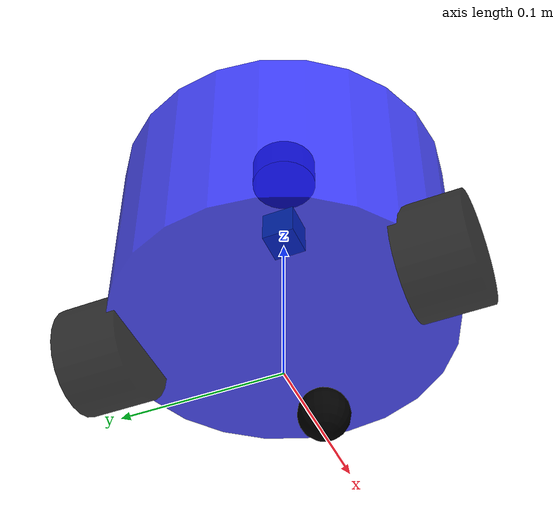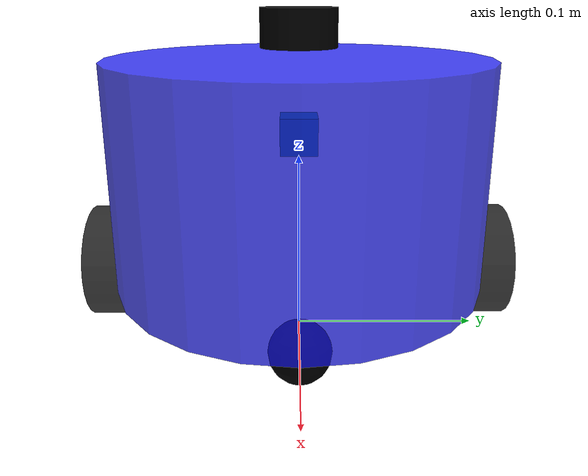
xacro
<?xml version="1.0"?>
<robot name="zmr_robot" xmlns:xacro="http://ros.org/wiki/xacro">

  <!-- To get a URDF file, run: `ros2 run xacro xacro robot.urdf.xacro > robot.urdf` -->

  <!-- Namespace (used to differentiate different robots) -->
  <xacro:arg name="namespace" default="zmr_X"/>

  <!-- Included the model -->
  <xacro:include filename="$(find zmr_description)/urdf/materials/model.urdf.xacro" />

  <!-- Load the model -->
  <xacro:zmr_model namespace="$(arg namespace)"/>

  <!-- Robot Footprint link and joint -->
  <link name="$(arg namespace)/base_footprint"/>
  <joint name="$(arg namespace)/base_joint" type="fixed">
    <parent link="$(arg namespace)/base_footprint"/>
    <child link="$(arg namespace)/base_link"/>
    <origin xyz="0.0 0.0 0.092" rpy="0 0 0"/> <!-- 0.092=0.016*2+0.12/2, caster and main body -->
  </joint>

</robot>

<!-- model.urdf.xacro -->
<robot xmlns:xacro="http://ros.org/wiki/xacro">

  <!-- Included URDF/XACRO Files -->
  <xacro:include filename="$(find zmr_description)/urdf/materials/materials.urdf.xacro" />
  <xacro:include filename="$(find zmr_description)/urdf/materials/parameters.urdf.xacro" />
  <xacro:include filename="$(find zmr_description)/urdf/materials/drive_model.urdf.xacro" />

  <!-- Robot Description -->
  <xacro:macro name="zmr_model" params="namespace">

    <!-- Driver -->
    <xacro:zmr_drive_model namespace="${namespace}"/>

    <!-- base link -->
    <link name="${namespace}/base_link">
      <visual>
        <origin xyz="0 0 0.0" rpy="0 0 0"/>
        <geometry>
          <cylinder length="${body_cylinder_length}" radius="${body_cylinder_radius}"/>
        </geometry>
        <material name="blue_body"/>
      </visual>

      <collision>
        <origin xyz="0 0 0.0" rpy="0 0 0"/>
        <geometry>
          <cylinder length="${body_cylinder_length}" radius="${body_cylinder_radius}"/>
        </geometry>
        <material name="blue_body"/>
      </collision>

      <inertial>
        <mass value="${body_cylinder_mass}"/>
        <xacro:cylinder_inertia m="${body_cylinder_mass}" r="${body_cylinder_radius}" h="${body_cylinder_length}" />
      </inertial>
    </link>

    <!-- laser link -->
    <link name="${namespace}/laser_link">
      <visual>
        <origin xyz="0 0 0" rpy="0 0 0"/>
        <geometry>
          <cylinder length="${laser_cylinder_length}" radius="${laser_cylinder_radius}"/>
        </geometry>
        <material name="black_laser"/>
      </visual>

      <collision>
        <origin xyz="0 0 0" rpy="0 0 0"/>
        <geometry>
          <cylinder length="${laser_cylinder_length}" radius="${laser_cylinder_radius}"/>
        </geometry>
        <material name="black_laser"/>
      </collision>

      <inertial>
        <mass value="${laser_cylinder_mass}"/>
        <xacro:cylinder_inertia m="${laser_cylinder_mass}" r="${laser_cylinder_radius}" h="${laser_cylinder_length}" />
      </inertial>
    </link>
    <!-- laser joint -->
    <joint name="${namespace}/laser_joint" type="fixed">
      <parent link="${namespace}/base_link" />
      <child link="${namespace}/laser_link" />
      <origin xyz="0 0 0.075" />
    </joint>

    <!-- imu link -->
    <link name="${namespace}/imu_link">
      <visual>
        <origin xyz="0 0 0.0" rpy="0 0 0"/>
        <geometry>
          <box size="${imu_box_length} ${imu_box_width} ${imu_box_height}"/>
        </geometry>
      </visual>

      <collision>
        <origin xyz="0 0 0.0" rpy="0 0 0"/>
        <geometry>
          <box size="${imu_box_length} ${imu_box_width} ${imu_box_height}"/>
        </geometry>
      </collision>

      <inertial>
        <mass value="${imu_box_mass}"/>
        <xacro:box_inertia m="${imu_box_mass}" x="${imu_box_length}" y="${imu_box_width}" z="${imu_box_height}" />
      </inertial>
    </link>
    <!-- imu joint -->
    <joint name="${namespace}/imu_joint" type="fixed">
      <parent link="${namespace}/base_link" />
      <child link="${namespace}/imu_link" />
      <origin xyz="0 0 0.02" />
    </joint>

    <!-- right wheel link -->
    <link name="${namespace}/right_wheel_link">
      <visual>
        <origin xyz="0 0 0" rpy="1.57079 0 0"/>
        <geometry>
          <cylinder length="${wheel_cylinder_length}" radius="${wheel_cylinder_radius}"/>
        </geometry>
        <material name="black_wheel"/>
      </visual>

      <collision>
        <origin xyz="0 0 0" rpy="1.57079 0 0"/>
        <geometry>
          <cylinder length="${wheel_cylinder_length}" radius="${wheel_cylinder_radius}"/>
        </geometry>
        <material name="black_wheel"/>
      </collision>

      <inertial>
        <mass value="${wheel_cylinder_mass}"/>
        <xacro:cylinder_inertia m="${wheel_cylinder_mass}" r="${wheel_cylinder_radius}" h="${wheel_cylinder_length}" />
      </inertial>
    </link>
    <!-- right wheel joint -->
    <joint name="${namespace}/right_wheel_joint" type="continuous">
      <parent link="${namespace}/base_link" />
      <child link="${namespace}/right_wheel_link" />
      <origin xyz="-0.02 -0.10 -0.06" />
      <axis xyz="0 1 0" />
    </joint>

    <!-- left wheel link -->
    <link name="${namespace}/left_wheel_link">
      <visual>
        <origin xyz="0 0 0" rpy="1.57079 0 0"/>
        <geometry>
          <cylinder length="${wheel_cylinder_length}" radius="${wheel_cylinder_radius}"/>
        </geometry>
        <material name="black_wheel"/>
      </visual>

      <collision>
        <origin xyz="0 0 0" rpy="1.57079 0 0"/>
        <geometry>
          <cylinder length="${wheel_cylinder_length}" radius="${wheel_cylinder_radius}"/>
        </geometry>
        <material name="black_wheel"/>
      </collision>

      <inertial>
        <mass value="${wheel_cylinder_mass}"/>
        <xacro:cylinder_inertia m="${wheel_cylinder_mass}" r="${wheel_cylinder_radius}" h="${wheel_cylinder_length}" />
      </inertial>
    </link>
    <!-- left wheel joint -->
    <joint name="${namespace}/left_wheel_joint" type="continuous">
      <parent link="${namespace}/base_link" />
      <child link="${namespace}/left_wheel_link" />
      <origin xyz="-0.02 0.10 -0.06" />
      <axis xyz="0 1 0" />
    </joint>

    <!-- caster link -->
    <link name="${namespace}/caster_link">
      <visual>
        <origin xyz="0 0 0" rpy="0 0 0"/>
        <geometry>
          <sphere radius="${caster_sphere_radius}"/>
        </geometry>
        <material name="black_caster"/>
      </visual>

      <collision>
        <origin xyz="0 0 0" rpy="1.57079 0 0"/>
        <geometry>
            <sphere radius="${caster_sphere_radius}"/>
        </geometry>
        <material name="black_caster"/>
      </collision>

      <inertial>
        <mass value="${caster_sphere_mass}"/>
        <xacro:sphere_inertia m="${caster_sphere_mass}" r="${caster_sphere_radius}" />
      </inertial>
    </link>
    <!-- caster joint -->
    <joint name="${namespace}/caster_joint" type="fixed">
      <parent link="${namespace}/base_link" />
      <child link="${namespace}/caster_link" />
      <origin xyz="0.06 0.0 -0.076" />
    </joint>

    <!-- Gazebo - caster joint -->
    <gazebo reference="${namespace}/caster_link">
      <material>Gazebo/Black</material>
      <mu1 value="0.0"/>
      <mu2 value="0.0"/>
      <kp value="1000000.0" />
      <kd value="10.0" />
    </gazebo>

    <!-- Gazebo - imu link -->
    <gazebo reference="${namespace}/imu_link">
      <sensor name="imu_sensor" type="imu">
        <plugin filename="libgazebo_ros_imu_sensor.so" name="imu_plugin">
          <ros>
            <namespace>${namespace}</namespace>
            <remapping>~/out:=imu</remapping>
          </ros>
          <initial_orientation_as_reference>false</initial_orientation_as_reference>
        </plugin>
        <always_on>true</always_on>
        <update_rate>100</update_rate>
        <visualize>true</visualize>
        <imu>
          <angular_velocity>
            <x>
              <noise type="gaussian">
                <mean>0.0</mean>
                <stddev>2e-4</stddev>
                <bias_mean>0.0000075</bias_mean>
                <bias_stddev>0.0000008</bias_stddev>
              </noise>
            </x>
            <y>
              <noise type="gaussian">
                <mean>0.0</mean>
                <stddev>2e-4</stddev>
                <bias_mean>0.0000075</bias_mean>
                <bias_stddev>0.0000008</bias_stddev>
              </noise>
            </y>
            <z>
              <noise type="gaussian">
                <mean>0.0</mean>
                <stddev>2e-4</stddev>
                <bias_mean>0.0000075</bias_mean>
                <bias_stddev>0.0000008</bias_stddev>
              </noise>
            </z>
          </angular_velocity>
          <linear_acceleration>
            <x>
              <noise type="gaussian">
                <mean>0.0</mean>
                <stddev>1.7e-2</stddev>
                <bias_mean>0.1</bias_mean>
                <bias_stddev>0.001</bias_stddev>
              </noise>
            </x>
            <y>
              <noise type="gaussian">
                <mean>0.0</mean>
                <stddev>1.7e-2</stddev>
                <bias_mean>0.1</bias_mean>
                <bias_stddev>0.001</bias_stddev>
              </noise>
            </y>
            <z>
              <noise type="gaussian">
                <mean>0.0</mean>
                <stddev>1.7e-2</stddev>
                <bias_mean>0.1</bias_mean>
                <bias_stddev>0.001</bias_stddev>
              </noise>
            </z>
          </linear_acceleration>
        </imu>
      </sensor>
    </gazebo>

    <!-- Gazebo - laser link -->
    <gazebo reference="${namespace}/laser_link">
      <sensor name="laser_sensor" type="ray">
        <always_on>true</always_on>
        <visualize>true</visualize>
        <material>Gazebo/Black</material>
        <update_rate>5</update_rate>
        <pose>0 0 0.075 0 0 0</pose>
        <ray>
          <scan>
            <horizontal>
              <samples>360</samples>
              <resolution>1.000000</resolution>
              <min_angle>0.000000</min_angle>
              <max_angle>6.280000</max_angle>
            </horizontal>
          </scan>
          <range>
            <min>0.120000</min>
            <max>3.5</max>
            <resolution>0.015000</resolution>
          </range>
          <noise>
            <type>gaussian</type>
            <mean>0.0</mean>
            <stddev>0.01</stddev>
          </noise>
        </ray>

        <plugin name="laserscan" filename="libgazebo_ros_ray_sensor.so">
          <ros>
            <namespace>${namespace}</namespace>
            <remapping>~/out:=scan</remapping>
          </ros>
          <output_type>sensor_msgs/LaserScan</output_type>
          <frame_name>${namespace}/laser_link</frame_name>
        </plugin>
      </sensor>
    </gazebo>

  </xacro:macro>

</robot>

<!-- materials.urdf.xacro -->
<robot>

  <!-- Material colors -->
  <material name="blue_body">
    <color rgba="0.1 0.1 1.0 0.8" />
  </material>
  <material name="black_laser">
    <color rgba="0.0 0.0 0.0 1.0" />
  </material>
  <material name="black_wheel">
    <color rgba="0.0 0.0 0.0 0.8" />
  </material>
  <material name="black_caster">
    <color rgba="0.0 0.0 0.0 1.0" />
  </material>

</robot>

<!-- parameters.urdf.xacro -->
<robot xmlns:xacro="http://ros.org/wiki/xacro">

  <!-- Parameters -->
  <!-- Main body cylinder -->
  <xacro:property name="body_cylinder_length" value="0.12" />
  <xacro:property name="body_cylinder_radius" value="0.10" />
  <xacro:property name="body_cylinder_mass" value="0.2" /> <!-- [kg] -->
  <!-- Laser cylinder -->
  <xacro:property name="laser_cylinder_length" value="0.02" />
  <xacro:property name="laser_cylinder_radius" value="0.02" />
  <xacro:property name="laser_cylinder_mass" value="0.1" /> <!-- [kg] -->
  <!-- IMU box -->
  <xacro:property name="imu_box_length" value="0.02" />
  <xacro:property name="imu_box_width" value="0.02" />
  <xacro:property name="imu_box_height" value="0.02" />
  <xacro:property name="imu_box_mass" value="0.1" /> <!-- [kg] -->
  <!-- Wheel cylinder -->
  <xacro:property name="wheel_cylinder_length" value="0.04" />
  <xacro:property name="wheel_cylinder_radius" value="0.032" />
  <xacro:property name="wheel_cylinder_mass" value="0.2" /> <!-- [kg] -->
  <!-- Caster sphere -->
  <xacro:property name="caster_sphere_radius" value="0.016" />
  <xacro:property name="caster_sphere_mass" value="0.02" /> <!-- [kg] -->

  <!-- Inertias [kg*m^2] (wikipedia.org/wiki/List_of_moments_of_inertia) -->
  <xacro:macro name="box_inertia" params="m x y z">
    <inertia  ixx="${m*(y*y+z*z)/12}" ixy = "0" ixz = "0"
              iyy="${m*(x*x+z*z)/12}" iyz = "0"
              izz="${m*(x*x+z*z)/12}" />
  </xacro:macro>
  <xacro:macro name="cylinder_inertia" params="m r h">
    <inertia  ixx="${m*(3*r*r+h*h)/12}" ixy = "0" ixz = "0"
              iyy="${m*(3*r*r+h*h)/12}" iyz = "0"
              izz="${m*r*r/2}" />
  </xacro:macro>
  <xacro:macro name="sphere_inertia" params="m r">
    <inertia  ixx="${2*m*r*r/5}" ixy = "0" ixz = "0"
              iyy="${2*m*r*r/5}" iyz = "0"
              izz="${2*m*r*r/5}" />
  </xacro:macro>

</robot>
